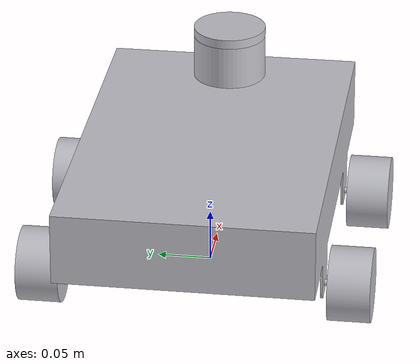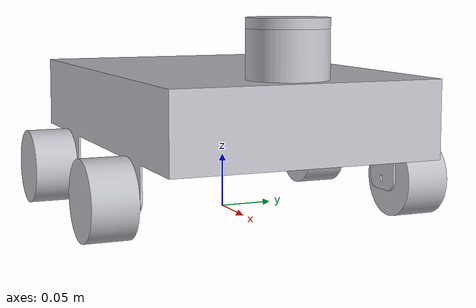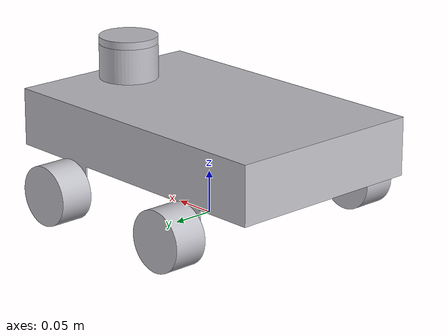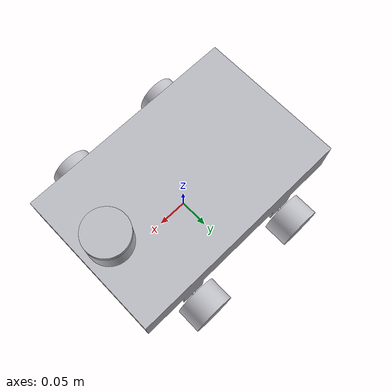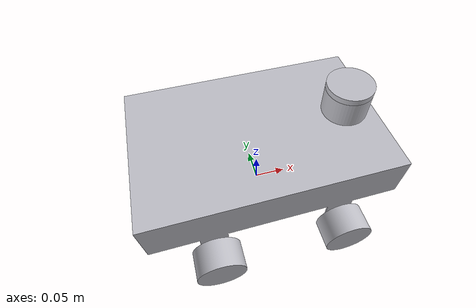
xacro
<?xml version="1.0" ?>
<robot name="robot" xmlns:xacro="http://www.ros.org/wiki/xacro">

<xacro:include filename="$(find robot_description)/urdf/materials.xacro" />
<xacro:include filename="$(find robot_description)/urdf/ros2_control.xacro" />

<link name="base_footprint"/>

<joint name="base_footprint_joint" type="fixed">
  <parent link="base_footprint"/>
  <child link="base_link"/>
  <origin xyz="0 0 0.064" rpy="0 0 0"/>
</joint>

<link name="base_link">
  <inertial>
    <origin xyz="2.33750278169299e-17 -0.003634923437563575 0.035317447022796454" rpy="0 0 0"/>
    <mass value="48.86947533809746"/>
    <inertia ixx="0.589976" iyy="0.253319" izz="0.798202" ixy="0.0" iyz="0.009536" ixz="0.0"/>
  </inertial>
  <visual>
    <origin xyz="0 0 0" rpy="0 0 1.5708"/>
    <geometry>
      <mesh filename="file://$(find robot_description)/meshes/base_link.stl" scale="0.001 0.001 0.001"/>
    </geometry>
    <material name="silver"/>
  </visual>
  <collision>
    <origin xyz="0 0 0" rpy="0 0 1.5708"/>
    <geometry>
      <mesh filename="file://$(find robot_description)/meshes/base_link.stl" scale="0.001 0.001 0.001"/>
    </geometry>
  </collision>
</link>

<link name="laser">
  <inertial>
    <origin xyz="-4.102907525596674e-18 0.0 0.00449999999999999" rpy="0 0 0"/>
    <mass value="0.27189306319574574"/>
    <inertia ixx="8.5e-05" iyy="8.5e-05" izz="0.000167" ixy="-0.0" iyz="0.0" ixz="0.0"/>
  </inertial>
  <visual>
    <origin xyz="0.0 0.14 -0.11" rpy="0 0 0"/>
    <geometry>
      <mesh filename="file://$(find robot_description)/meshes/lidar.stl" scale="0.001 0.001 0.001"/>
    </geometry>
    <material name="silver"/>
  </visual>
  <collision>
    <origin xyz="0.0 0.14 -0.11" rpy="0 0 0"/>
    <geometry>
      <mesh filename="file://$(find robot_description)/meshes/lidar.stl" scale="0.001 0.001 0.001"/>
    </geometry>
  </collision>
</link>

<link name="right_front_wheel">
  <inertial>
    <origin xyz="0.019999999999999962 0.0 0.0" rpy="0 0 0"/>
    <mass value="1.2084136142033135"/>
    <inertia ixx="0.00074" iyy="0.000531" izz="0.000531" ixy="0.0" iyz="-0.0" ixz="0.0"/>
  </inertial>
  <visual>
    <origin xyz="-0.095 0.12525 0.03" rpy="0 0 1.5708"/>
    <geometry>
      <mesh filename="file://$(find robot_description)/meshes/right_front_wheel.stl" scale="0.001 0.001 0.001"/>
    </geometry>
    <material name="silver"/>
  </visual>
  <collision>
    <origin xyz="-0.095 0.12525 0.03" rpy="0 0 1.5708"/>
    <geometry>
      <mesh filename="file://$(find robot_description)/meshes/right_front_wheel.stl" scale="0.001 0.001 0.001"/>
    </geometry>
  </collision>
</link>

<link name="right_rear_wheel">
  <inertial>
    <origin xyz="0.019999999999999962 0.0 0.0" rpy="0 0 0"/>
    <mass value="1.2084136142033135"/>
    <inertia ixx="0.00074" iyy="0.000531" izz="0.000531" ixy="-0.0" iyz="0.0" ixz="0.0"/>
  </inertial>
  <visual>
    <origin xyz="0.095 0.12525 0.03" rpy="0 0 1.5708"/>
    <geometry>
      <mesh filename="file://$(find robot_description)/meshes/right_rear_wheel.stl" scale="0.001 0.001 0.001"/>
    </geometry>
    <material name="silver"/>
  </visual>
  <collision>
    <origin xyz="-0.12525 -0.095 0.03" rpy="0 0 1.5708"/>
    <geometry>
      <mesh filename="file://$(find robot_description)/meshes/right_rear_wheel.stl" scale="0.001 0.001 0.001"/>
    </geometry>
  </collision>
</link>

<link name="left_rear_wheel">
  <inertial>
    <origin xyz="-0.01999999999999999 0.0 0.0" rpy="0 0 0"/>
    <mass value="1.2084136142033135"/>
    <inertia ixx="0.00074" iyy="0.000531" izz="0.000531" ixy="0.0" iyz="0.0" ixz="-0.0"/>
  </inertial>
  <visual>
    <origin xyz="0.095 -0.12525 0.03" rpy="0 0 1.5708"/>
    <geometry>
      <mesh filename="file://$(find robot_description)/meshes/left_rear_wheel.stl" scale="0.001 0.001 0.001"/>
    </geometry>
    <material name="silver"/>
  </visual>
  <collision>
    <origin xyz="0.095 -0.12525 0.03" rpy="0 0 1.5708"/>
    <geometry>
      <mesh filename="file://$(find robot_description)/meshes/left_rear_wheel.stl" scale="0.001 0.001 0.001"/>
    </geometry>
  </collision>
</link>

<link name="left_front_wheel">
  <inertial>
    <origin xyz="-0.01999999999999999 0.0 0.0" rpy="0 0 0"/>
    <mass value="1.2084136142033135"/>
    <inertia ixx="0.00074" iyy="0.000531" izz="0.000531" ixy="-0.0" iyz="-0.0" ixz="-0.0"/>
  </inertial>
  <visual>
    <origin xyz="-0.095 -0.12525 0.03" rpy="0 0 1.5708"/>
    <geometry>
      <mesh filename="file://$(find robot_description)/meshes/left_front_wheel.stl" scale="0.001 0.001 0.001"/>
    </geometry>
    <material name="silver"/>
  </visual>
  <collision>
    <origin xyz="-0.095 -0.12525 0.03" rpy="0 0 1.5708"/>
    <geometry>
      <mesh filename="file://$(find robot_description)/meshes/left_front_wheel.stl" scale="0.001 0.001 0.001"/>
    </geometry>
  </collision>
</link>

<joint name="lidar_joint" type="fixed">
  <origin xyz="0.14 0.0 0.11" rpy="0 0 3.14"/>
  <parent link="base_link"/>
  <child link="laser"/>
</joint>

<joint name="right_front_wheel_joint" type="continuous">
  <origin xyz="0.095 -0.12525 -0.03" rpy="0 0 0"/>
  <parent link="base_link"/>
  <child link="right_front_wheel"/>
  <axis xyz="0.0 1.0 0.0"/>
</joint>

<joint name="right_rear_wheel_joint" type="continuous">
  <origin xyz="-0.095 -0.12525 -0.03" rpy="0 0 0"/>
  <parent link="base_link"/>
  <child link="right_rear_wheel"/>
  <axis xyz="0.0 1.0 0.0"/>
</joint>

<joint name="left_rear_wheel_joint" type="continuous">
  <origin xyz="-0.095 0.12525 -0.03" rpy="0 0 0"/>
  <parent link="base_link"/>
  <child link="left_rear_wheel"/>
  <axis xyz="0.0 1.0 0.0"/>
</joint>

<joint name="left_front_wheel_joint" type="continuous">
  <origin xyz="0.095 0.12525 -0.03" rpy="0 0 0"/>
  <parent link="base_link"/>
  <child link="left_front_wheel"/>
  <axis xyz="0.0 1.0 0.0"/>
</joint>

</robot>
